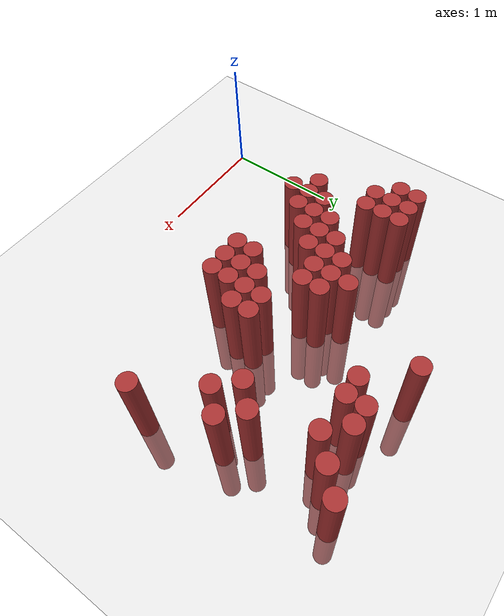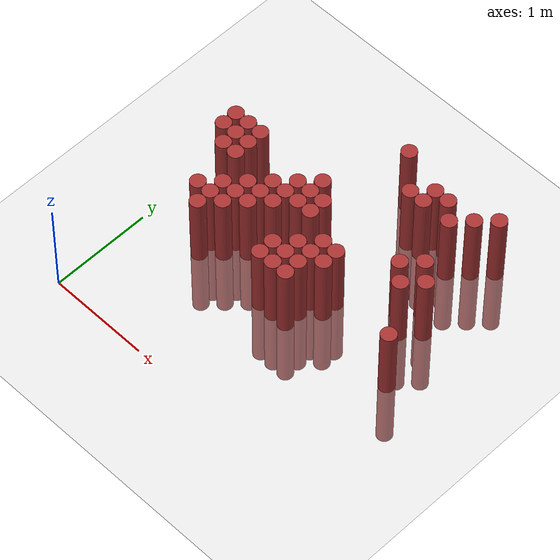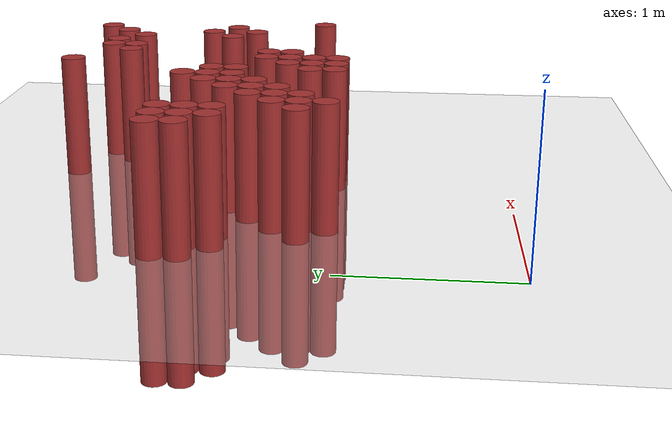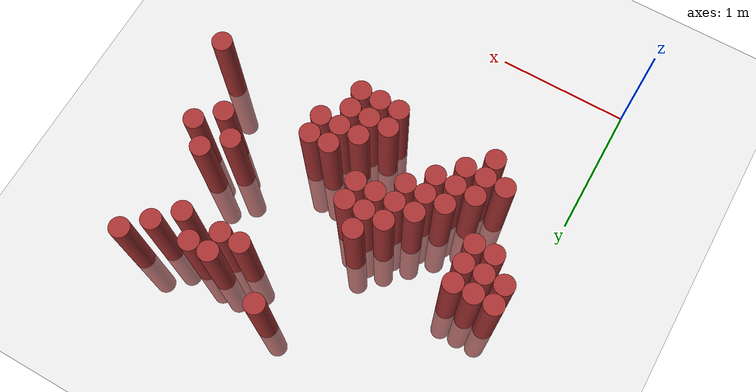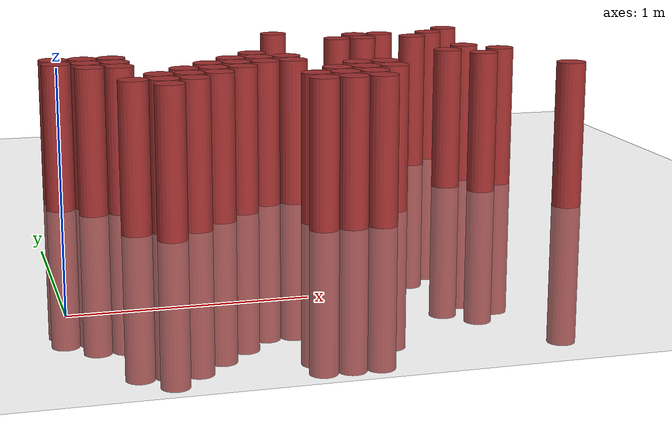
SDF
<sdf version="1.6">
 <world name="default">
  <model name="ground_plane">
   <static>1</static>
   <link name="link">
    <collision name="collision">
     <geometry><plane><normal>0 0 1</normal><size>100 100</size></plane></geometry>
     <surface><friction><ode><mu>100</mu><mu2>50</mu2></ode></friction></surface>
    </collision>
    <visual name="visual">
     <cast_shadows>0</cast_shadows>
     <geometry><plane><normal>0 0 1</normal><size>100 100</size></plane></geometry>
     <material>
      <script><uri>file://media/materials/scripts/gazebo.material</uri><name>Gazebo/Grey</name></script>
     </material>
    </visual>
   </link>
  </model>
  <model name="unit_cylinder_410">
   <static>1</static>
   <pose>0.175000 1.825000 0.000000 0.000000 0.000000 0.000000</pose>
   <link name="link">
    <inertial>
     <mass>1</mass>
     <inertia><ixx>0.145833</ixx><ixy>0</ixy><ixz>0</ixz><iyy>0.145833</iyy><iyz>0</iyz><izz>0.125</izz></inertia>
    </inertial>
    <collision name="collision">
     <geometry><cylinder><radius>0.075000</radius><length>1.5</length></cylinder></geometry>
    </collision>
    <visual name="visual">
     <geometry><cylinder><radius>0.075000</radius><length>1.5</length></cylinder></geometry>
     <material>
      <ambient>0.648000 0.192000 0.192000 1</ambient>
      <diffuse>0.648000 0.192000 0.192000 1</diffuse>
     </material>
     <material>
      <script><name>Gazebo/Grey</name><uri>file://media/materials/scripts/gazebo.material</uri></script>
     </material>
    </visual>
   </link>
  </model>
  <model name="unit_cylinder_411">
   <static>1</static>
   <pose>0.175000 1.975000 0.000000 0.000000 0.000000 0.000000</pose>
   <link name="link">
    <inertial>
     <mass>1</mass>
     <inertia><ixx>0.145833</ixx><ixy>0</ixy><ixz>0</ixz><iyy>0.145833</iyy><iyz>0</iyz><izz>0.125</izz></inertia>
    </inertial>
    <collision name="collision">
     <geometry><cylinder><radius>0.075000</radius><length>1.5</length></cylinder></geometry>
    </collision>
    <visual name="visual">
     <geometry><cylinder><radius>0.075000</radius><length>1.5</length></cylinder></geometry>
     <material>
      <ambient>0.648000 0.192000 0.192000 1</ambient>
      <diffuse>0.648000 0.192000 0.192000 1</diffuse>
     </material>
     <material>
      <script><name>Gazebo/Grey</name><uri>file://media/materials/scripts/gazebo.material</uri></script>
     </material>
    </visual>
   </link>
  </model>
  <model name="unit_cylinder_420">
   <static>1</static>
   <pose>0.325000 1.675000 0.000000 0.000000 0.000000 0.000000</pose>
   <link name="link">
    <inertial>
     <mass>1</mass>
     <inertia><ixx>0.145833</ixx><ixy>0</ixy><ixz>0</ixz><iyy>0.145833</iyy><iyz>0</iyz><izz>0.125</izz></inertia>
    </inertial>
    <collision name="collision">
     <geometry><cylinder><radius>0.075000</radius><length>1.5</length></cylinder></geometry>
    </collision>
    <visual name="visual">
     <geometry><cylinder><radius>0.075000</radius><length>1.5</length></cylinder></geometry>
     <material>
      <ambient>0.648000 0.192000 0.192000 1</ambient>
      <diffuse>0.648000 0.192000 0.192000 1</diffuse>
     </material>
     <material>
      <script><name>Gazebo/Grey</name><uri>file://media/materials/scripts/gazebo.material</uri></script>
     </material>
    </visual>
   </link>
  </model>
  <model name="unit_cylinder_421">
   <static>1</static>
   <pose>0.325000 1.825000 0.000000 0.000000 0.000000 0.000000</pose>
   <link name="link">
    <inertial>
     <mass>1</mass>
     <inertia><ixx>0.145833</ixx><ixy>0</ixy><ixz>0</ixz><iyy>0.145833</iyy><iyz>0</iyz><izz>0.125</izz></inertia>
    </inertial>
    <collision name="collision">
     <geometry><cylinder><radius>0.075000</radius><length>1.5</length></cylinder></geometry>
    </collision>
    <visual name="visual">
     <geometry><cylinder><radius>0.075000</radius><length>1.5</length></cylinder></geometry>
     <material>
      <ambient>0.648000 0.192000 0.192000 1</ambient>
      <diffuse>0.648000 0.192000 0.192000 1</diffuse>
     </material>
     <material>
      <script><name>Gazebo/Grey</name><uri>file://media/materials/scripts/gazebo.material</uri></script>
     </material>
    </visual>
   </link>
  </model>
  <model name="unit_cylinder_422">
   <static>1</static>
   <pose>0.325000 1.975000 0.000000 0.000000 0.000000 0.000000</pose>
   <link name="link">
    <inertial>
     <mass>1</mass>
     <inertia><ixx>0.145833</ixx><ixy>0</ixy><ixz>0</ixz><iyy>0.145833</iyy><iyz>0</iyz><izz>0.125</izz></inertia>
    </inertial>
    <collision name="collision">
     <geometry><cylinder><radius>0.075000</radius><length>1.5</length></cylinder></geometry>
    </collision>
    <visual name="visual">
     <geometry><cylinder><radius>0.075000</radius><length>1.5</length></cylinder></geometry>
     <material>
      <ambient>0.648000 0.192000 0.192000 1</ambient>
      <diffuse>0.648000 0.192000 0.192000 1</diffuse>
     </material>
     <material>
      <script><name>Gazebo/Grey</name><uri>file://media/materials/scripts/gazebo.material</uri></script>
     </material>
    </visual>
   </link>
  </model>
  <model name="unit_cylinder_425">
   <static>1</static>
   <pose>0.475000 1.225000 0.000000 0.000000 0.000000 0.000000</pose>
   <link name="link">
    <inertial>
     <mass>1</mass>
     <inertia><ixx>0.145833</ixx><ixy>0</ixy><ixz>0</ixz><iyy>0.145833</iyy><iyz>0</iyz><izz>0.125</izz></inertia>
    </inertial>
    <collision name="collision">
     <geometry><cylinder><radius>0.075000</radius><length>1.5</length></cylinder></geometry>
    </collision>
    <visual name="visual">
     <geometry><cylinder><radius>0.075000</radius><length>1.5</length></cylinder></geometry>
     <material>
      <ambient>0.648000 0.192000 0.192000 1</ambient>
      <diffuse>0.648000 0.192000 0.192000 1</diffuse>
     </material>
     <material>
      <script><name>Gazebo/Grey</name><uri>file://media/materials/scripts/gazebo.material</uri></script>
     </material>
    </visual>
   </link>
  </model>
  <model name="unit_cylinder_426">
   <static>1</static>
   <pose>0.475000 1.675000 0.000000 0.000000 0.000000 0.000000</pose>
   <link name="link">
    <inertial>
     <mass>1</mass>
     <inertia><ixx>0.145833</ixx><ixy>0</ixy><ixz>0</ixz><iyy>0.145833</iyy><iyz>0</iyz><izz>0.125</izz></inertia>
    </inertial>
    <collision name="collision">
     <geometry><cylinder><radius>0.075000</radius><length>1.5</length></cylinder></geometry>
    </collision>
    <visual name="visual">
     <geometry><cylinder><radius>0.075000</radius><length>1.5</length></cylinder></geometry>
     <material>
      <ambient>0.648000 0.192000 0.192000 1</ambient>
      <diffuse>0.648000 0.192000 0.192000 1</diffuse>
     </material>
     <material>
      <script><name>Gazebo/Grey</name><uri>file://media/materials/scripts/gazebo.material</uri></script>
     </material>
    </visual>
   </link>
  </model>
  <model name="unit_cylinder_427">
   <static>1</static>
   <pose>0.475000 1.825000 0.000000 0.000000 0.000000 0.000000</pose>
   <link name="link">
    <inertial>
     <mass>1</mass>
     <inertia><ixx>0.145833</ixx><ixy>0</ixy><ixz>0</ixz><iyy>0.145833</iyy><iyz>0</iyz><izz>0.125</izz></inertia>
    </inertial>
    <collision name="collision">
     <geometry><cylinder><radius>0.075000</radius><length>1.5</length></cylinder></geometry>
    </collision>
    <visual name="visual">
     <geometry><cylinder><radius>0.075000</radius><length>1.5</length></cylinder></geometry>
     <material>
      <ambient>0.648000 0.192000 0.192000 1</ambient>
      <diffuse>0.648000 0.192000 0.192000 1</diffuse>
     </material>
     <material>
      <script><name>Gazebo/Grey</name><uri>file://media/materials/scripts/gazebo.material</uri></script>
     </material>
    </visual>
   </link>
  </model>
  <model name="unit_cylinder_428">
   <static>1</static>
   <pose>0.475000 1.975000 0.000000 0.000000 0.000000 0.000000</pose>
   <link name="link">
    <inertial>
     <mass>1</mass>
     <inertia><ixx>0.145833</ixx><ixy>0</ixy><ixz>0</ixz><iyy>0.145833</iyy><iyz>0</iyz><izz>0.125</izz></inertia>
    </inertial>
    <collision name="collision">
     <geometry><cylinder><radius>0.075000</radius><length>1.5</length></cylinder></geometry>
    </collision>
    <visual name="visual">
     <geometry><cylinder><radius>0.075000</radius><length>1.5</length></cylinder></geometry>
     <material>
      <ambient>0.648000 0.192000 0.192000 1</ambient>
      <diffuse>0.648000 0.192000 0.192000 1</diffuse>
     </material>
     <material>
      <script><name>Gazebo/Grey</name><uri>file://media/materials/scripts/gazebo.material</uri></script>
     </material>
    </visual>
   </link>
  </model>
  <model name="unit_cylinder_429">
   <static>1</static>
   <pose>0.625000 1.075000 0.000000 0.000000 0.000000 0.000000</pose>
   <link name="link">
    <inertial>
     <mass>1</mass>
     <inertia><ixx>0.145833</ixx><ixy>0</ixy><ixz>0</ixz><iyy>0.145833</iyy><iyz>0</iyz><izz>0.125</izz></inertia>
    </inertial>
    <collision name="collision">
     <geometry><cylinder><radius>0.075000</radius><length>1.5</length></cylinder></geometry>
    </collision>
    <visual name="visual">
     <geometry><cylinder><radius>0.075000</radius><length>1.5</length></cylinder></geometry>
     <material>
      <ambient>0.648000 0.192000 0.192000 1</ambient>
      <diffuse>0.648000 0.192000 0.192000 1</diffuse>
     </material>
     <material>
      <script><name>Gazebo/Grey</name><uri>file://media/materials/scripts/gazebo.material</uri></script>
     </material>
    </visual>
   </link>
  </model>
  <model name="unit_cylinder_430">
   <static>1</static>
   <pose>0.625000 1.225000 0.000000 0.000000 0.000000 0.000000</pose>
   <link name="link">
    <inertial>
     <mass>1</mass>
     <inertia><ixx>0.145833</ixx><ixy>0</ixy><ixz>0</ixz><iyy>0.145833</iyy><iyz>0</iyz><izz>0.125</izz></inertia>
    </inertial>
    <collision name="collision">
     <geometry><cylinder><radius>0.075000</radius><length>1.5</length></cylinder></geometry>
    </collision>
    <visual name="visual">
     <geometry><cylinder><radius>0.075000</radius><length>1.5</length></cylinder></geometry>
     <material>
      <ambient>0.648000 0.192000 0.192000 1</ambient>
      <diffuse>0.648000 0.192000 0.192000 1</diffuse>
     </material>
     <material>
      <script><name>Gazebo/Grey</name><uri>file://media/materials/scripts/gazebo.material</uri></script>
     </material>
    </visual>
   </link>
  </model>
  <model name="unit_cylinder_431">
   <static>1</static>
   <pose>0.625000 1.375000 0.000000 0.000000 0.000000 0.000000</pose>
   <link name="link">
    <inertial>
     <mass>1</mass>
     <inertia><ixx>0.145833</ixx><ixy>0</ixy><ixz>0</ixz><iyy>0.145833</iyy><iyz>0</iyz><izz>0.125</izz></inertia>
    </inertial>
    <collision name="collision">
     <geometry><cylinder><radius>0.075000</radius><length>1.5</length></cylinder></geometry>
    </collision>
    <visual name="visual">
     <geometry><cylinder><radius>0.075000</radius><length>1.5</length></cylinder></geometry>
     <material>
      <ambient>0.648000 0.192000 0.192000 1</ambient>
      <diffuse>0.648000 0.192000 0.192000 1</diffuse>
     </material>
     <material>
      <script><name>Gazebo/Grey</name><uri>file://media/materials/scripts/gazebo.material</uri></script>
     </material>
    </visual>
   </link>
  </model>
  <model name="unit_cylinder_433">
   <static>1</static>
   <pose>0.775000 1.225000 0.000000 0.000000 0.000000 0.000000</pose>
   <link name="link">
    <inertial>
     <mass>1</mass>
     <inertia><ixx>0.145833</ixx><ixy>0</ixy><ixz>0</ixz><iyy>0.145833</iyy><iyz>0</iyz><izz>0.125</izz></inertia>
    </inertial>
    <collision name="collision">
     <geometry><cylinder><radius>0.075000</radius><length>1.5</length></cylinder></geometry>
    </collision>
    <visual name="visual">
     <geometry><cylinder><radius>0.075000</radius><length>1.5</length></cylinder></geometry>
     <material>
      <ambient>0.648000 0.192000 0.192000 1</ambient>
      <diffuse>0.648000 0.192000 0.192000 1</diffuse>
     </material>
     <material>
      <script><name>Gazebo/Grey</name><uri>file://media/materials/scripts/gazebo.material</uri></script>
     </material>
    </visual>
   </link>
  </model>
  <model name="unit_cylinder_434">
   <static>1</static>
   <pose>0.775000 1.375000 0.000000 0.000000 0.000000 0.000000</pose>
   <link name="link">
    <inertial>
     <mass>1</mass>
     <inertia><ixx>0.145833</ixx><ixy>0</ixy><ixz>0</ixz><iyy>0.145833</iyy><iyz>0</iyz><izz>0.125</izz></inertia>
    </inertial>
    <collision name="collision">
     <geometry><cylinder><radius>0.075000</radius><length>1.5</length></cylinder></geometry>
    </collision>
    <visual name="visual">
     <geometry><cylinder><radius>0.075000</radius><length>1.5</length></cylinder></geometry>
     <material>
      <ambient>0.648000 0.192000 0.192000 1</ambient>
      <diffuse>0.648000 0.192000 0.192000 1</diffuse>
     </material>
     <material>
      <script><name>Gazebo/Grey</name><uri>file://media/materials/scripts/gazebo.material</uri></script>
     </material>
    </visual>
   </link>
  </model>
  <model name="unit_cylinder_435">
   <static>1</static>
   <pose>0.775000 1.525000 0.000000 0.000000 0.000000 0.000000</pose>
   <link name="link">
    <inertial>
     <mass>1</mass>
     <inertia><ixx>0.145833</ixx><ixy>0</ixy><ixz>0</ixz><iyy>0.145833</iyy><iyz>0</iyz><izz>0.125</izz></inertia>
    </inertial>
    <collision name="collision">
     <geometry><cylinder><radius>0.075000</radius><length>1.5</length></cylinder></geometry>
    </collision>
    <visual name="visual">
     <geometry><cylinder><radius>0.075000</radius><length>1.5</length></cylinder></geometry>
     <material>
      <ambient>0.648000 0.192000 0.192000 1</ambient>
      <diffuse>0.648000 0.192000 0.192000 1</diffuse>
     </material>
     <material>
      <script><name>Gazebo/Grey</name><uri>file://media/materials/scripts/gazebo.material</uri></script>
     </material>
    </visual>
   </link>
  </model>
  <model name="unit_cylinder_442">
   <static>1</static>
   <pose>0.925000 1.375000 0.000000 0.000000 0.000000 0.000000</pose>
   <link name="link">
    <inertial>
     <mass>1</mass>
     <inertia><ixx>0.145833</ixx><ixy>0</ixy><ixz>0</ixz><iyy>0.145833</iyy><iyz>0</iyz><izz>0.125</izz></inertia>
    </inertial>
    <collision name="collision">
     <geometry><cylinder><radius>0.075000</radius><length>1.5</length></cylinder></geometry>
    </collision>
    <visual name="visual">
     <geometry><cylinder><radius>0.075000</radius><length>1.5</length></cylinder></geometry>
     <material>
      <ambient>0.648000 0.192000 0.192000 1</ambient>
      <diffuse>0.648000 0.192000 0.192000 1</diffuse>
     </material>
     <material>
      <script><name>Gazebo/Grey</name><uri>file://media/materials/scripts/gazebo.material</uri></script>
     </material>
    </visual>
   </link>
  </model>
  <model name="unit_cylinder_443">
   <static>1</static>
   <pose>0.925000 1.525000 0.000000 0.000000 0.000000 0.000000</pose>
   <link name="link">
    <inertial>
     <mass>1</mass>
     <inertia><ixx>0.145833</ixx><ixy>0</ixy><ixz>0</ixz><iyy>0.145833</iyy><iyz>0</iyz><izz>0.125</izz></inertia>
    </inertial>
    <collision name="collision">
     <geometry><cylinder><radius>0.075000</radius><length>1.5</length></cylinder></geometry>
    </collision>
    <visual name="visual">
     <geometry><cylinder><radius>0.075000</radius><length>1.5</length></cylinder></geometry>
     <material>
      <ambient>0.648000 0.192000 0.192000 1</ambient>
      <diffuse>0.648000 0.192000 0.192000 1</diffuse>
     </material>
     <material>
      <script><name>Gazebo/Grey</name><uri>file://media/materials/scripts/gazebo.material</uri></script>
     </material>
    </visual>
   </link>
  </model>
  <model name="unit_cylinder_444">
   <static>1</static>
   <pose>0.925000 1.675000 0.000000 0.000000 0.000000 0.000000</pose>
   <link name="link">
    <inertial>
     <mass>1</mass>
     <inertia><ixx>0.145833</ixx><ixy>0</ixy><ixz>0</ixz><iyy>0.145833</iyy><iyz>0</iyz><izz>0.125</izz></inertia>
    </inertial>
    <collision name="collision">
     <geometry><cylinder><radius>0.075000</radius><length>1.5</length></cylinder></geometry>
    </collision>
    <visual name="visual">
     <geometry><cylinder><radius>0.075000</radius><length>1.5</length></cylinder></geometry>
     <material>
      <ambient>0.648000 0.192000 0.192000 1</ambient>
      <diffuse>0.648000 0.192000 0.192000 1</diffuse>
     </material>
     <material>
      <script><name>Gazebo/Grey</name><uri>file://media/materials/scripts/gazebo.material</uri></script>
     </material>
    </visual>
   </link>
  </model>
  <model name="unit_cylinder_450">
   <static>1</static>
   <pose>1.075000 1.525000 0.000000 0.000000 0.000000 0.000000</pose>
   <link name="link">
    <inertial>
     <mass>1</mass>
     <inertia><ixx>0.145833</ixx><ixy>0</ixy><ixz>0</ixz><iyy>0.145833</iyy><iyz>0</iyz><izz>0.125</izz></inertia>
    </inertial>
    <collision name="collision">
     <geometry><cylinder><radius>0.075000</radius><length>1.5</length></cylinder></geometry>
    </collision>
    <visual name="visual">
     <geometry><cylinder><radius>0.075000</radius><length>1.5</length></cylinder></geometry>
     <material>
      <ambient>0.648000 0.192000 0.192000 1</ambient>
      <diffuse>0.648000 0.192000 0.192000 1</diffuse>
     </material>
     <material>
      <script><name>Gazebo/Grey</name><uri>file://media/materials/scripts/gazebo.material</uri></script>
     </material>
    </visual>
   </link>
  </model>
  <model name="unit_cylinder_451">
   <static>1</static>
   <pose>1.075000 1.675000 0.000000 0.000000 0.000000 0.000000</pose>
   <link name="link">
    <inertial>
     <mass>1</mass>
     <inertia><ixx>0.145833</ixx><ixy>0</ixy><ixz>0</ixz><iyy>0.145833</iyy><iyz>0</iyz><izz>0.125</izz></inertia>
    </inertial>
    <collision name="collision">
     <geometry><cylinder><radius>0.075000</radius><length>1.5</length></cylinder></geometry>
    </collision>
    <visual name="visual">
     <geometry><cylinder><radius>0.075000</radius><length>1.5</length></cylinder></geometry>
     <material>
      <ambient>0.648000 0.192000 0.192000 1</ambient>
      <diffuse>0.648000 0.192000 0.192000 1</diffuse>
     </material>
     <material>
      <script><name>Gazebo/Grey</name><uri>file://media/materials/scripts/gazebo.material</uri></script>
     </material>
    </visual>
   </link>
  </model>
  <model name="unit_cylinder_452">
   <static>1</static>
   <pose>1.075000 1.825000 0.000000 0.000000 0.000000 0.000000</pose>
   <link name="link">
    <inertial>
     <mass>1</mass>
     <inertia><ixx>0.145833</ixx><ixy>0</ixy><ixz>0</ixz><iyy>0.145833</iyy><iyz>0</iyz><izz>0.125</izz></inertia>
    </inertial>
    <collision name="collision">
     <geometry><cylinder><radius>0.075000</radius><length>1.5</length></cylinder></geometry>
    </collision>
    <visual name="visual">
     <geometry><cylinder><radius>0.075000</radius><length>1.5</length></cylinder></geometry>
     <material>
      <ambient>0.648000 0.192000 0.192000 1</ambient>
      <diffuse>0.648000 0.192000 0.192000 1</diffuse>
     </material>
     <material>
      <script><name>Gazebo/Grey</name><uri>file://media/materials/scripts/gazebo.material</uri></script>
     </material>
    </visual>
   </link>
  </model>
  <model name="unit_cylinder_455">
   <static>1</static>
   <pose>1.225000 1.675000 0.000000 0.000000 0.000000 0.000000</pose>
   <link name="link">
    <inertial>
     <mass>1</mass>
     <inertia><ixx>0.145833</ixx><ixy>0</ixy><ixz>0</ixz><iyy>0.145833</iyy><iyz>0</iyz><izz>0.125</izz></inertia>
    </inertial>
    <collision name="collision">
     <geometry><cylinder><radius>0.075000</radius><length>1.5</length></cylinder></geometry>
    </collision>
    <visual name="visual">
     <geometry><cylinder><radius>0.075000</radius><length>1.5</length></cylinder></geometry>
     <material>
      <ambient>0.648000 0.192000 0.192000 1</ambient>
      <diffuse>0.648000 0.192000 0.192000 1</diffuse>
     </material>
     <material>
      <script><name>Gazebo/Grey</name><uri>file://media/materials/scripts/gazebo.material</uri></script>
     </material>
    </visual>
   </link>
  </model>
  <model name="unit_cylinder_456">
   <static>1</static>
   <pose>1.225000 1.825000 0.000000 0.000000 0.000000 0.000000</pose>
   <link name="link">
    <inertial>
     <mass>1</mass>
     <inertia><ixx>0.145833</ixx><ixy>0</ixy><ixz>0</ixz><iyy>0.145833</iyy><iyz>0</iyz><izz>0.125</izz></inertia>
    </inertial>
    <collision name="collision">
     <geometry><cylinder><radius>0.075000</radius><length>1.5</length></cylinder></geometry>
    </collision>
    <visual name="visual">
     <geometry><cylinder><radius>0.075000</radius><length>1.5</length></cylinder></geometry>
     <material>
      <ambient>0.648000 0.192000 0.192000 1</ambient>
      <diffuse>0.648000 0.192000 0.192000 1</diffuse>
     </material>
     <material>
      <script><name>Gazebo/Grey</name><uri>file://media/materials/scripts/gazebo.material</uri></script>
     </material>
    </visual>
   </link>
  </model>
  <model name="unit_cylinder_457">
   <static>1</static>
   <pose>1.225000 1.975000 0.000000 0.000000 0.000000 0.000000</pose>
   <link name="link">
    <inertial>
     <mass>1</mass>
     <inertia><ixx>0.145833</ixx><ixy>0</ixy><ixz>0</ixz><iyy>0.145833</iyy><iyz>0</iyz><izz>0.125</izz></inertia>
    </inertial>
    <collision name="collision">
     <geometry><cylinder><radius>0.075000</radius><length>1.5</length></cylinder></geometry>
    </collision>
    <visual name="visual">
     <geometry><cylinder><radius>0.075000</radius><length>1.5</length></cylinder></geometry>
     <material>
      <ambient>0.648000 0.192000 0.192000 1</ambient>
      <diffuse>0.648000 0.192000 0.192000 1</diffuse>
     </material>
     <material>
      <script><name>Gazebo/Grey</name><uri>file://media/materials/scripts/gazebo.material</uri></script>
     </material>
    </visual>
   </link>
  </model>
  <model name="unit_cylinder_460">
   <static>1</static>
   <pose>1.375000 1.075000 0.000000 0.000000 0.000000 0.000000</pose>
   <link name="link">
    <inertial>
     <mass>1</mass>
     <inertia><ixx>0.145833</ixx><ixy>0</ixy><ixz>0</ixz><iyy>0.145833</iyy><iyz>0</iyz><izz>0.125</izz></inertia>
    </inertial>
    <collision name="collision">
     <geometry><cylinder><radius>0.075000</radius><length>1.5</length></cylinder></geometry>
    </collision>
    <visual name="visual">
     <geometry><cylinder><radius>0.075000</radius><length>1.5</length></cylinder></geometry>
     <material>
      <ambient>0.648000 0.192000 0.192000 1</ambient>
      <diffuse>0.648000 0.192000 0.192000 1</diffuse>
     </material>
     <material>
      <script><name>Gazebo/Grey</name><uri>file://media/materials/scripts/gazebo.material</uri></script>
     </material>
    </visual>
   </link>
  </model>
  <model name="unit_cylinder_461">
   <static>1</static>
   <pose>1.375000 1.225000 0.000000 0.000000 0.000000 0.000000</pose>
   <link name="link">
    <inertial>
     <mass>1</mass>
     <inertia><ixx>0.145833</ixx><ixy>0</ixy><ixz>0</ixz><iyy>0.145833</iyy><iyz>0</iyz><izz>0.125</izz></inertia>
    </inertial>
    <collision name="collision">
     <geometry><cylinder><radius>0.075000</radius><length>1.5</length></cylinder></geometry>
    </collision>
    <visual name="visual">
     <geometry><cylinder><radius>0.075000</radius><length>1.5</length></cylinder></geometry>
     <material>
      <ambient>0.648000 0.192000 0.192000 1</ambient>
      <diffuse>0.648000 0.192000 0.192000 1</diffuse>
     </material>
     <material>
      <script><name>Gazebo/Grey</name><uri>file://media/materials/scripts/gazebo.material</uri></script>
     </material>
    </visual>
   </link>
  </model>
  <model name="unit_cylinder_462">
   <static>1</static>
   <pose>1.375000 1.675000 0.000000 0.000000 0.000000 0.000000</pose>
   <link name="link">
    <inertial>
     <mass>1</mass>
     <inertia><ixx>0.145833</ixx><ixy>0</ixy><ixz>0</ixz><iyy>0.145833</iyy><iyz>0</iyz><izz>0.125</izz></inertia>
    </inertial>
    <collision name="collision">
     <geometry><cylinder><radius>0.075000</radius><length>1.5</length></cylinder></geometry>
    </collision>
    <visual name="visual">
     <geometry><cylinder><radius>0.075000</radius><length>1.5</length></cylinder></geometry>
     <material>
      <ambient>0.648000 0.192000 0.192000 1</ambient>
      <diffuse>0.648000 0.192000 0.192000 1</diffuse>
     </material>
     <material>
      <script><name>Gazebo/Grey</name><uri>file://media/materials/scripts/gazebo.material</uri></script>
     </material>
    </visual>
   </link>
  </model>
  <model name="unit_cylinder_463">
   <static>1</static>
   <pose>1.375000 1.825000 0.000000 0.000000 0.000000 0.000000</pose>
   <link name="link">
    <inertial>
     <mass>1</mass>
     <inertia><ixx>0.145833</ixx><ixy>0</ixy><ixz>0</ixz><iyy>0.145833</iyy><iyz>0</iyz><izz>0.125</izz></inertia>
    </inertial>
    <collision name="collision">
     <geometry><cylinder><radius>0.075000</radius><length>1.5</length></cylinder></geometry>
    </collision>
    <visual name="visual">
     <geometry><cylinder><radius>0.075000</radius><length>1.5</length></cylinder></geometry>
     <material>
      <ambient>0.648000 0.192000 0.192000 1</ambient>
      <diffuse>0.648000 0.192000 0.192000 1</diffuse>
     </material>
     <material>
      <script><name>Gazebo/Grey</name><uri>file://media/materials/scripts/gazebo.material</uri></script>
     </material>
    </visual>
   </link>
  </model>
  <model name="unit_cylinder_467">
   <static>1</static>
   <pose>1.525000 1.075000 0.000000 0.000000 0.000000 0.000000</pose>
   <link name="link">
    <inertial>
     <mass>1</mass>
     <inertia><ixx>0.145833</ixx><ixy>0</ixy><ixz>0</ixz><iyy>0.145833</iyy><iyz>0</iyz><izz>0.125</izz></inertia>
    </inertial>
    <collision name="collision">
     <geometry><cylinder><radius>0.075000</radius><length>1.5</length></cylinder></geometry>
    </collision>
    <visual name="visual">
     <geometry><cylinder><radius>0.075000</radius><length>1.5</length></cylinder></geometry>
     <material>
      <ambient>0.648000 0.192000 0.192000 1</ambient>
      <diffuse>0.648000 0.192000 0.192000 1</diffuse>
     </material>
     <material>
      <script><name>Gazebo/Grey</name><uri>file://media/materials/scripts/gazebo.material</uri></script>
     </material>
    </visual>
   </link>
  </model>
  <model name="unit_cylinder_468">
   <static>1</static>
   <pose>1.525000 1.225000 0.000000 0.000000 0.000000 0.000000</pose>
   <link name="link">
    <inertial>
     <mass>1</mass>
     <inertia><ixx>0.145833</ixx><ixy>0</ixy><ixz>0</ixz><iyy>0.145833</iyy><iyz>0</iyz><izz>0.125</izz></inertia>
    </inertial>
    <collision name="collision">
     <geometry><cylinder><radius>0.075000</radius><length>1.5</length></cylinder></geometry>
    </collision>
    <visual name="visual">
     <geometry><cylinder><radius>0.075000</radius><length>1.5</length></cylinder></geometry>
     <material>
      <ambient>0.648000 0.192000 0.192000 1</ambient>
      <diffuse>0.648000 0.192000 0.192000 1</diffuse>
     </material>
     <material>
      <script><name>Gazebo/Grey</name><uri>file://media/materials/scripts/gazebo.material</uri></script>
     </material>
    </visual>
   </link>
  </model>
  <model name="unit_cylinder_469">
   <static>1</static>
   <pose>1.525000 1.375000 0.000000 0.000000 0.000000 0.000000</pose>
   <link name="link">
    <inertial>
     <mass>1</mass>
     <inertia><ixx>0.145833</ixx><ixy>0</ixy><ixz>0</ixz><iyy>0.145833</iyy><iyz>0</iyz><izz>0.125</izz></inertia>
    </inertial>
    <collision name="collision">
     <geometry><cylinder><radius>0.075000</radius><length>1.5</length></cylinder></geometry>
    </collision>
    <visual name="visual">
     <geometry><cylinder><radius>0.075000</radius><length>1.5</length></cylinder></geometry>
     <material>
      <ambient>0.648000 0.192000 0.192000 1</ambient>
      <diffuse>0.648000 0.192000 0.192000 1</diffuse>
     </material>
     <material>
      <script><name>Gazebo/Grey</name><uri>file://media/materials/scripts/gazebo.material</uri></script>
     </material>
    </visual>
   </link>
  </model>
  <model name="unit_cylinder_470">
   <static>1</static>
   <pose>1.525000 2.725000 0.000000 0.000000 0.000000 0.000000</pose>
   <link name="link">
    <inertial>
     <mass>1</mass>
     <inertia><ixx>0.145833</ixx><ixy>0</ixy><ixz>0</ixz><iyy>0.145833</iyy><iyz>0</iyz><izz>0.125</izz></inertia>
    </inertial>
    <collision name="collision">
     <geometry><cylinder><radius>0.075000</radius><length>1.5</length></cylinder></geometry>
    </collision>
    <visual name="visual">
     <geometry><cylinder><radius>0.075000</radius><length>1.5</length></cylinder></geometry>
     <material>
      <ambient>0.648000 0.192000 0.192000 1</ambient>
      <diffuse>0.648000 0.192000 0.192000 1</diffuse>
     </material>
     <material>
      <script><name>Gazebo/Grey</name><uri>file://media/materials/scripts/gazebo.material</uri></script>
     </material>
    </visual>
   </link>
  </model>
  <model name="unit_cylinder_473">
   <static>1</static>
   <pose>1.675000 1.075000 0.000000 0.000000 0.000000 0.000000</pose>
   <link name="link">
    <inertial>
     <mass>1</mass>
     <inertia><ixx>0.145833</ixx><ixy>0</ixy><ixz>0</ixz><iyy>0.145833</iyy><iyz>0</iyz><izz>0.125</izz></inertia>
    </inertial>
    <collision name="collision">
     <geometry><cylinder><radius>0.075000</radius><length>1.5</length></cylinder></geometry>
    </collision>
    <visual name="visual">
     <geometry><cylinder><radius>0.075000</radius><length>1.5</length></cylinder></geometry>
     <material>
      <ambient>0.648000 0.192000 0.192000 1</ambient>
      <diffuse>0.648000 0.192000 0.192000 1</diffuse>
     </material>
     <material>
      <script><name>Gazebo/Grey</name><uri>file://media/materials/scripts/gazebo.material</uri></script>
     </material>
    </visual>
   </link>
  </model>
  <model name="unit_cylinder_474">
   <static>1</static>
   <pose>1.675000 1.225000 0.000000 0.000000 0.000000 0.000000</pose>
   <link name="link">
    <inertial>
     <mass>1</mass>
     <inertia><ixx>0.145833</ixx><ixy>0</ixy><ixz>0</ixz><iyy>0.145833</iyy><iyz>0</iyz><izz>0.125</izz></inertia>
    </inertial>
    <collision name="collision">
     <geometry><cylinder><radius>0.075000</radius><length>1.5</length></cylinder></geometry>
    </collision>
    <visual name="visual">
     <geometry><cylinder><radius>0.075000</radius><length>1.5</length></cylinder></geometry>
     <material>
      <ambient>0.648000 0.192000 0.192000 1</ambient>
      <diffuse>0.648000 0.192000 0.192000 1</diffuse>
     </material>
     <material>
      <script><name>Gazebo/Grey</name><uri>file://media/materials/scripts/gazebo.material</uri></script>
     </material>
    </visual>
   </link>
  </model>
  <model name="unit_cylinder_475">
   <static>1</static>
   <pose>1.675000 1.375000 0.000000 0.000000 0.000000 0.000000</pose>
   <link name="link">
    <inertial>
     <mass>1</mass>
     <inertia><ixx>0.145833</ixx><ixy>0</ixy><ixz>0</ixz><iyy>0.145833</iyy><iyz>0</iyz><izz>0.125</izz></inertia>
    </inertial>
    <collision name="collision">
     <geometry><cylinder><radius>0.075000</radius><length>1.5</length></cylinder></geometry>
    </collision>
    <visual name="visual">
     <geometry><cylinder><radius>0.075000</radius><length>1.5</length></cylinder></geometry>
     <material>
      <ambient>0.648000 0.192000 0.192000 1</ambient>
      <diffuse>0.648000 0.192000 0.192000 1</diffuse>
     </material>
     <material>
      <script><name>Gazebo/Grey</name><uri>file://media/materials/scripts/gazebo.material</uri></script>
     </material>
    </visual>
   </link>
  </model>
  <model name="unit_cylinder_476">
   <static>1</static>
   <pose>1.675000 1.525000 0.000000 0.000000 0.000000 0.000000</pose>
   <link name="link">
    <inertial>
     <mass>1</mass>
     <inertia><ixx>0.145833</ixx><ixy>0</ixy><ixz>0</ixz><iyy>0.145833</iyy><iyz>0</iyz><izz>0.125</izz></inertia>
    </inertial>
    <collision name="collision">
     <geometry><cylinder><radius>0.075000</radius><length>1.5</length></cylinder></geometry>
    </collision>
    <visual name="visual">
     <geometry><cylinder><radius>0.075000</radius><length>1.5</length></cylinder></geometry>
     <material>
      <ambient>0.648000 0.192000 0.192000 1</ambient>
      <diffuse>0.648000 0.192000 0.192000 1</diffuse>
     </material>
     <material>
      <script><name>Gazebo/Grey</name><uri>file://media/materials/scripts/gazebo.material</uri></script>
     </material>
    </visual>
   </link>
  </model>
  <model name="unit_cylinder_479">
   <static>1</static>
   <pose>1.825000 1.375000 0.000000 0.000000 0.000000 0.000000</pose>
   <link name="link">
    <inertial>
     <mass>1</mass>
     <inertia><ixx>0.145833</ixx><ixy>0</ixy><ixz>0</ixz><iyy>0.145833</iyy><iyz>0</iyz><izz>0.125</izz></inertia>
    </inertial>
    <collision name="collision">
     <geometry><cylinder><radius>0.075000</radius><length>1.5</length></cylinder></geometry>
    </collision>
    <visual name="visual">
     <geometry><cylinder><radius>0.075000</radius><length>1.5</length></cylinder></geometry>
     <material>
      <ambient>0.648000 0.192000 0.192000 1</ambient>
      <diffuse>0.648000 0.192000 0.192000 1</diffuse>
     </material>
     <material>
      <script><name>Gazebo/Grey</name><uri>file://media/materials/scripts/gazebo.material</uri></script>
     </material>
    </visual>
   </link>
  </model>
  <model name="unit_cylinder_480">
   <static>1</static>
   <pose>1.825000 1.525000 0.000000 0.000000 0.000000 0.000000</pose>
   <link name="link">
    <inertial>
     <mass>1</mass>
     <inertia><ixx>0.145833</ixx><ixy>0</ixy><ixz>0</ixz><iyy>0.145833</iyy><iyz>0</iyz><izz>0.125</izz></inertia>
    </inertial>
    <collision name="collision">
     <geometry><cylinder><radius>0.075000</radius><length>1.5</length></cylinder></geometry>
    </collision>
    <visual name="visual">
     <geometry><cylinder><radius>0.075000</radius><length>1.5</length></cylinder></geometry>
     <material>
      <ambient>0.648000 0.192000 0.192000 1</ambient>
      <diffuse>0.648000 0.192000 0.192000 1</diffuse>
     </material>
     <material>
      <script><name>Gazebo/Grey</name><uri>file://media/materials/scripts/gazebo.material</uri></script>
     </material>
    </visual>
   </link>
  </model>
  <model name="unit_cylinder_481">
   <static>1</static>
   <pose>1.825000 2.425000 0.000000 0.000000 0.000000 0.000000</pose>
   <link name="link">
    <inertial>
     <mass>1</mass>
     <inertia><ixx>0.145833</ixx><ixy>0</ixy><ixz>0</ixz><iyy>0.145833</iyy><iyz>0</iyz><izz>0.125</izz></inertia>
    </inertial>
    <collision name="collision">
     <geometry><cylinder><radius>0.075000</radius><length>1.5</length></cylinder></geometry>
    </collision>
    <visual name="visual">
     <geometry><cylinder><radius>0.075000</radius><length>1.5</length></cylinder></geometry>
     <material>
      <ambient>0.648000 0.192000 0.192000 1</ambient>
      <diffuse>0.648000 0.192000 0.192000 1</diffuse>
     </material>
     <material>
      <script><name>Gazebo/Grey</name><uri>file://media/materials/scripts/gazebo.material</uri></script>
     </material>
    </visual>
   </link>
  </model>
  <model name="unit_cylinder_483">
   <static>1</static>
   <pose>1.975000 2.425000 0.000000 0.000000 0.000000 0.000000</pose>
   <link name="link">
    <inertial>
     <mass>1</mass>
     <inertia><ixx>0.145833</ixx><ixy>0</ixy><ixz>0</ixz><iyy>0.145833</iyy><iyz>0</iyz><izz>0.125</izz></inertia>
    </inertial>
    <collision name="collision">
     <geometry><cylinder><radius>0.075000</radius><length>1.5</length></cylinder></geometry>
    </collision>
    <visual name="visual">
     <geometry><cylinder><radius>0.075000</radius><length>1.5</length></cylinder></geometry>
     <material>
      <ambient>0.648000 0.192000 0.192000 1</ambient>
      <diffuse>0.648000 0.192000 0.192000 1</diffuse>
     </material>
     <material>
      <script><name>Gazebo/Grey</name><uri>file://media/materials/scripts/gazebo.material</uri></script>
     </material>
    </visual>
   </link>
  </model>
  <model name="unit_cylinder_484">
   <static>1</static>
   <pose>1.975000 2.575000 0.000000 0.000000 0.000000 0.000000</pose>
   <link name="link">
    <inertial>
     <mass>1</mass>
     <inertia><ixx>0.145833</ixx><ixy>0</ixy><ixz>0</ixz><iyy>0.145833</iyy><iyz>0</iyz><izz>0.125</izz></inertia>
    </inertial>
    <collision name="collision">
     <geometry><cylinder><radius>0.075000</radius><length>1.5</length></cylinder></geometry>
    </collision>
    <visual name="visual">
     <geometry><cylinder><radius>0.075000</radius><length>1.5</length></cylinder></geometry>
     <material>
      <ambient>0.648000 0.192000 0.192000 1</ambient>
      <diffuse>0.648000 0.192000 0.192000 1</diffuse>
     </material>
     <material>
      <script><name>Gazebo/Grey</name><uri>file://media/materials/scripts/gazebo.material</uri></script>
     </material>
    </visual>
   </link>
  </model>
  <model name="unit_cylinder_485">
   <static>1</static>
   <pose>2.125000 2.575000 0.000000 0.000000 0.000000 0.000000</pose>
   <link name="link">
    <inertial>
     <mass>1</mass>
     <inertia><ixx>0.145833</ixx><ixy>0</ixy><ixz>0</ixz><iyy>0.145833</iyy><iyz>0</iyz><izz>0.125</izz></inertia>
    </inertial>
    <collision name="collision">
     <geometry><cylinder><radius>0.075000</radius><length>1.5</length></cylinder></geometry>
    </collision>
    <visual name="visual">
     <geometry><cylinder><radius>0.075000</radius><length>1.5</length></cylinder></geometry>
     <material>
      <ambient>0.648000 0.192000 0.192000 1</ambient>
      <diffuse>0.648000 0.192000 0.192000 1</diffuse>
     </material>
     <material>
      <script><name>Gazebo/Grey</name><uri>file://media/materials/scripts/gazebo.material</uri></script>
     </material>
    </visual>
   </link>
  </model>
  <model name="unit_cylinder_491">
   <static>1</static>
   <pose>2.275000 1.825000 0.000000 0.000000 0.000000 0.000000</pose>
   <link name="link">
    <inertial>
     <mass>1</mass>
     <inertia><ixx>0.145833</ixx><ixy>0</ixy><ixz>0</ixz><iyy>0.145833</iyy><iyz>0</iyz><izz>0.125</izz></inertia>
    </inertial>
    <collision name="collision">
     <geometry><cylinder><radius>0.075000</radius><length>1.5</length></cylinder></geometry>
    </collision>
    <visual name="visual">
     <geometry><cylinder><radius>0.075000</radius><length>1.5</length></cylinder></geometry>
     <material>
      <ambient>0.648000 0.192000 0.192000 1</ambient>
      <diffuse>0.648000 0.192000 0.192000 1</diffuse>
     </material>
     <material>
      <script><name>Gazebo/Grey</name><uri>file://media/materials/scripts/gazebo.material</uri></script>
     </material>
    </visual>
   </link>
  </model>
  <model name="unit_cylinder_492">
   <static>1</static>
   <pose>2.275000 2.425000 0.000000 0.000000 0.000000 0.000000</pose>
   <link name="link">
    <inertial>
     <mass>1</mass>
     <inertia><ixx>0.145833</ixx><ixy>0</ixy><ixz>0</ixz><iyy>0.145833</iyy><iyz>0</iyz><izz>0.125</izz></inertia>
    </inertial>
    <collision name="collision">
     <geometry><cylinder><radius>0.075000</radius><length>1.5</length></cylinder></geometry>
    </collision>
    <visual name="visual">
     <geometry><cylinder><radius>0.075000</radius><length>1.5</length></cylinder></geometry>
     <material>
      <ambient>0.648000 0.192000 0.192000 1</ambient>
      <diffuse>0.648000 0.192000 0.192000 1</diffuse>
     </material>
     <material>
      <script><name>Gazebo/Grey</name><uri>file://media/materials/scripts/gazebo.material</uri></script>
     </material>
    </visual>
   </link>
  </model>
  <model name="unit_cylinder_499">
   <static>1</static>
   <pose>2.425000 1.675000 0.000000 0.000000 0.000000 0.000000</pose>
   <link name="link">
    <inertial>
     <mass>1</mass>
     <inertia><ixx>0.145833</ixx><ixy>0</ixy><ixz>0</ixz><iyy>0.145833</iyy><iyz>0</iyz><izz>0.125</izz></inertia>
    </inertial>
    <collision name="collision">
     <geometry><cylinder><radius>0.075000</radius><length>1.5</length></cylinder></geometry>
    </collision>
    <visual name="visual">
     <geometry><cylinder><radius>0.075000</radius><length>1.5</length></cylinder></geometry>
     <material>
      <ambient>0.648000 0.192000 0.192000 1</ambient>
      <diffuse>0.648000 0.192000 0.192000 1</diffuse>
     </material>
     <material>
      <script><name>Gazebo/Grey</name><uri>file://media/materials/scripts/gazebo.material</uri></script>
     </material>
    </visual>
   </link>
  </model>
  <model name="unit_cylinder_500">
   <static>1</static>
   <pose>2.425000 1.975000 0.000000 0.000000 0.000000 0.000000</pose>
   <link name="link">
    <inertial>
     <mass>1</mass>
     <inertia><ixx>0.145833</ixx><ixy>0</ixy><ixz>0</ixz><iyy>0.145833</iyy><iyz>0</iyz><izz>0.125</izz></inertia>
    </inertial>
    <collision name="collision">
     <geometry><cylinder><radius>0.075000</radius><length>1.5</length></cylinder></geometry>
    </collision>
    <visual name="visual">
     <geometry><cylinder><radius>0.075000</radius><length>1.5</length></cylinder></geometry>
     <material>
      <ambient>0.648000 0.192000 0.192000 1</ambient>
      <diffuse>0.648000 0.192000 0.192000 1</diffuse>
     </material>
     <material>
      <script><name>Gazebo/Grey</name><uri>file://media/materials/scripts/gazebo.material</uri></script>
     </material>
    </visual>
   </link>
  </model>
  <model name="unit_cylinder_501">
   <static>1</static>
   <pose>2.425000 2.575000 0.000000 0.000000 0.000000 0.000000</pose>
   <link name="link">
    <inertial>
     <mass>1</mass>
     <inertia><ixx>0.145833</ixx><ixy>0</ixy><ixz>0</ixz><iyy>0.145833</iyy><iyz>0</iyz><izz>0.125</izz></inertia>
    </inertial>
    <collision name="collision">
     <geometry><cylinder><radius>0.075000</radius><length>1.5</length></cylinder></geometry>
    </collision>
    <visual name="visual">
     <geometry><cylinder><radius>0.075000</radius><length>1.5</length></cylinder></geometry>
     <material>
      <ambient>0.648000 0.192000 0.192000 1</ambient>
      <diffuse>0.648000 0.192000 0.192000 1</diffuse>
     </material>
     <material>
      <script><name>Gazebo/Grey</name><uri>file://media/materials/scripts/gazebo.material</uri></script>
     </material>
    </visual>
   </link>
  </model>
  <model name="unit_cylinder_508">
   <static>1</static>
   <pose>2.575000 1.825000 0.000000 0.000000 0.000000 0.000000</pose>
   <link name="link">
    <inertial>
     <mass>1</mass>
     <inertia><ixx>0.145833</ixx><ixy>0</ixy><ixz>0</ixz><iyy>0.145833</iyy><iyz>0</iyz><izz>0.125</izz></inertia>
    </inertial>
    <collision name="collision">
     <geometry><cylinder><radius>0.075000</radius><length>1.5</length></cylinder></geometry>
    </collision>
    <visual name="visual">
     <geometry><cylinder><radius>0.075000</radius><length>1.5</length></cylinder></geometry>
     <material>
      <ambient>0.648000 0.192000 0.192000 1</ambient>
      <diffuse>0.648000 0.192000 0.192000 1</diffuse>
     </material>
     <material>
      <script><name>Gazebo/Grey</name><uri>file://media/materials/scripts/gazebo.material</uri></script>
     </material>
    </visual>
   </link>
  </model>
  <model name="unit_cylinder_509">
   <static>1</static>
   <pose>2.575000 2.725000 0.000000 0.000000 0.000000 0.000000</pose>
   <link name="link">
    <inertial>
     <mass>1</mass>
     <inertia><ixx>0.145833</ixx><ixy>0</ixy><ixz>0</ixz><iyy>0.145833</iyy><iyz>0</iyz><izz>0.125</izz></inertia>
    </inertial>
    <collision name="collision">
     <geometry><cylinder><radius>0.075000</radius><length>1.5</length></cylinder></geometry>
    </collision>
    <visual name="visual">
     <geometry><cylinder><radius>0.075000</radius><length>1.5</length></cylinder></geometry>
     <material>
      <ambient>0.648000 0.192000 0.192000 1</ambient>
      <diffuse>0.648000 0.192000 0.192000 1</diffuse>
     </material>
     <material>
      <script><name>Gazebo/Grey</name><uri>file://media/materials/scripts/gazebo.material</uri></script>
     </material>
    </visual>
   </link>
  </model>
  <model name="unit_cylinder_515">
   <static>1</static>
   <pose>2.725000 1.225000 0.000000 0.000000 0.000000 0.000000</pose>
   <link name="link">
    <inertial>
     <mass>1</mass>
     <inertia><ixx>0.145833</ixx><ixy>0</ixy><ixz>0</ixz><iyy>0.145833</iyy><iyz>0</iyz><izz>0.125</izz></inertia>
    </inertial>
    <collision name="collision">
     <geometry><cylinder><radius>0.075000</radius><length>1.5</length></cylinder></geometry>
    </collision>
    <visual name="visual">
     <geometry><cylinder><radius>0.075000</radius><length>1.5</length></cylinder></geometry>
     <material>
      <ambient>0.648000 0.192000 0.192000 1</ambient>
      <diffuse>0.648000 0.192000 0.192000 1</diffuse>
     </material>
     <material>
      <script><name>Gazebo/Grey</name><uri>file://media/materials/scripts/gazebo.material</uri></script>
     </material>
    </visual>
   </link>
  </model>
 </world>
</sdf>
